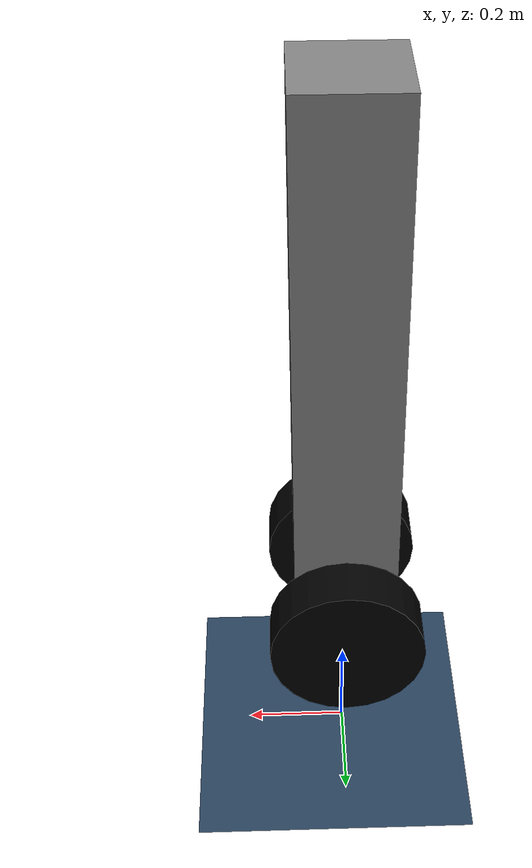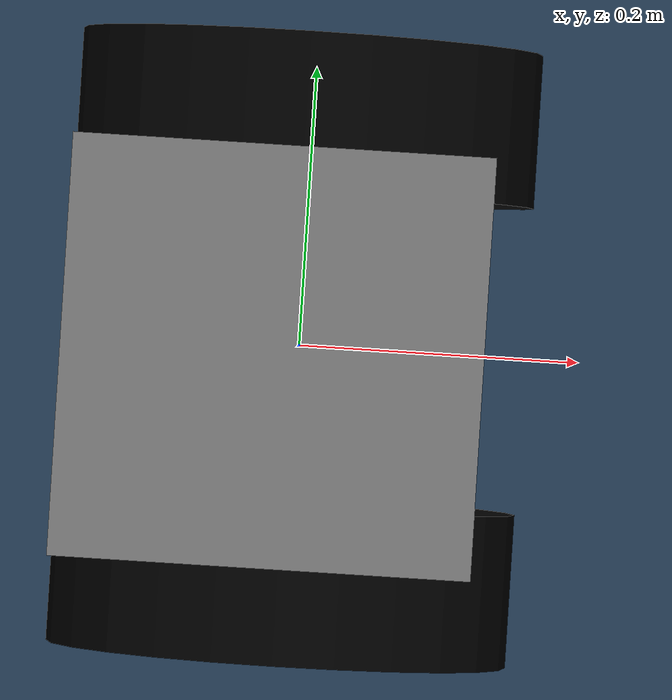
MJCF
<mujoco model="segway_model">
    <compiler angle="radian" />

    <!-- Assets -->
    <asset>
        <texture type="skybox" builtin="gradient" rgb1=".3 .5 .7" rgb2="0 0 0" width="512"
            height="512" />
        <texture name="grid" type="2d" builtin="checker" width="512" height="512" rgb1=".1 .2 .3"
            rgb2=".2 .3 .4" />
        <material name="grid" texture="grid" texrepeat="10 10" texuniform="true" reflectance=".2" />
    </asset>

    <!-- Default settings -->
    <default>
        <motor forcelimited="true" forcerange="-50 50" ctrlrange="-1 1" ctrllimited="true" />
        <geom condim="3" friction="1.0 0.1 0.1" solimp=".9 .9 .01" solref=".02 1" />
        <joint armature="0.01" damping="0.01" frictionloss="0.1" />
    </default>

    <!-- Worldbody -->
    <worldbody>
        <camera name="fixed" pos="0 -3 1" zaxis="0 0 1" />
        <light directional="true" diffuse=".8 .8 .8" specular=".2 .2 .2" dir="0 -1 -2" />

        <!-- Floor -->
        <geom name="floor" type="plane" size="10 10 .1" material="grid" />

        <!-- Segway body -->
        <body name="segway" pos="0 0 1">
            <joint name="segway_sideways" type="free" limited="false" />
            <geom type="box" size="0.1 0.1 0.5" rgba="0.5 0.5 0.5 1" />

            <!-- Wheels -->
            <body name="left_wheel" pos="0 -0.15 -0.6">
                <joint name="left_wheel_hinge" type="hinge" axis="0 1 0" limited="false" />
                <geom type="cylinder" size="0.15 0.05" rgba="0 0 0 1" zaxis="0 1 0" />
            </body>
            <body name="right_wheel" pos="0 0.15 -0.6">
                <joint name="right_wheel_hinge" type="hinge" axis="0 1 0" limited="false" />
                <geom type="cylinder" size="0.15 0.05" rgba="0 0 0 1" zaxis="0 1 0" />
            </body>
        </body>
    </worldbody>
</mujoco>
